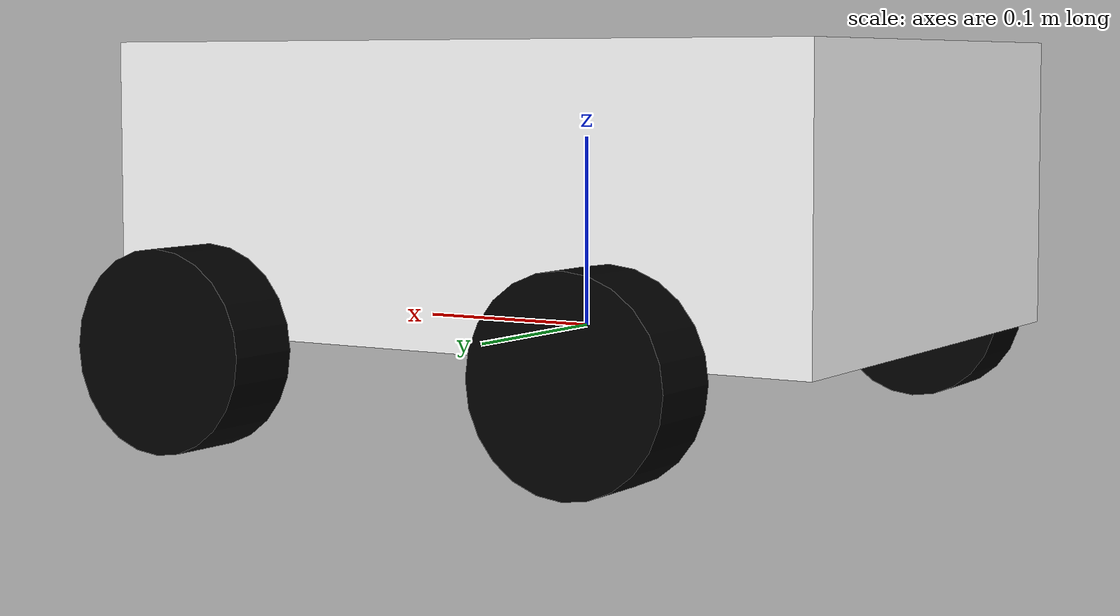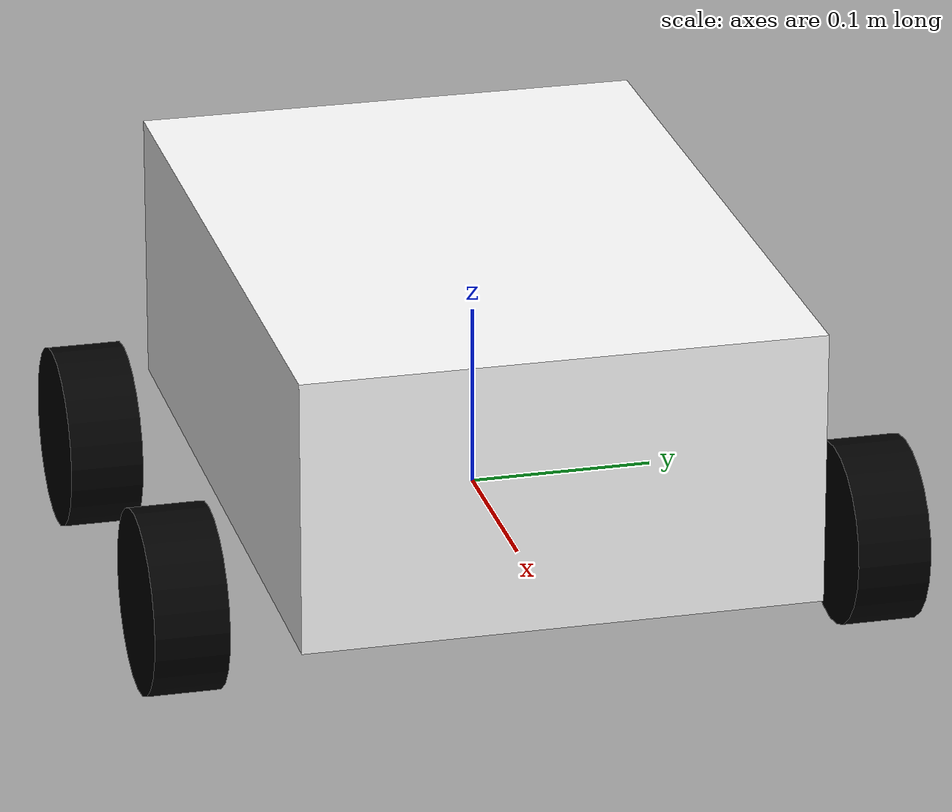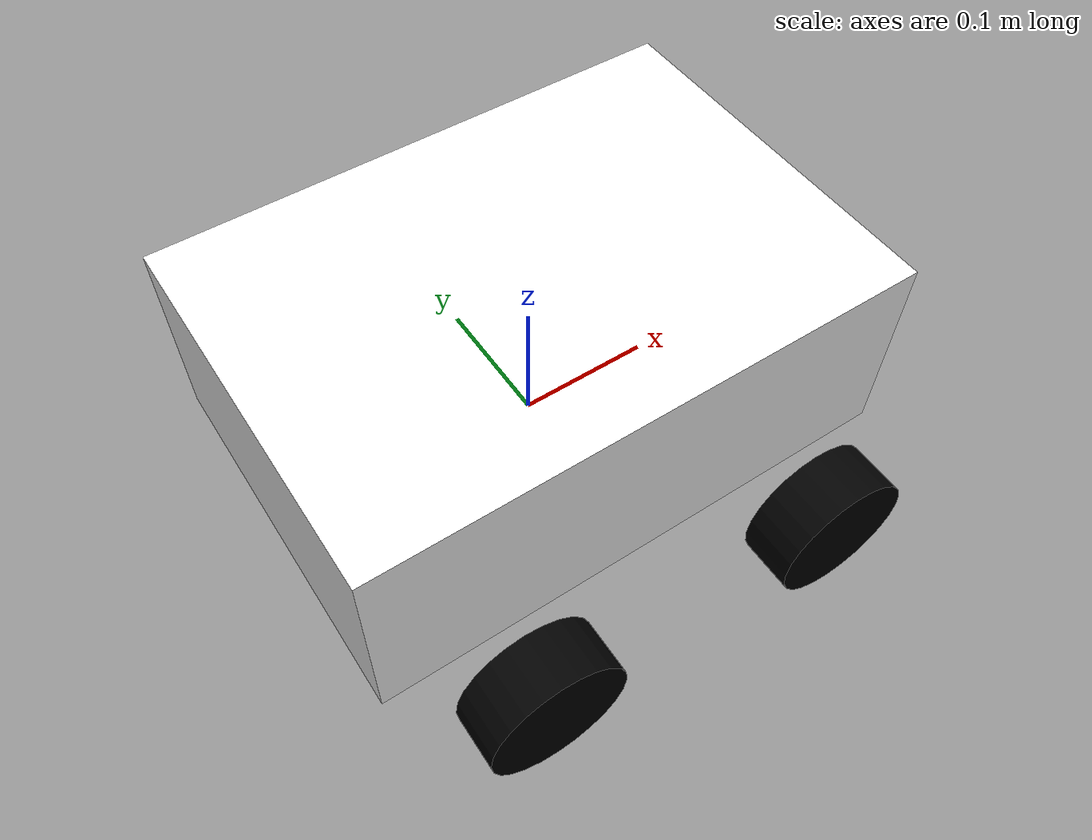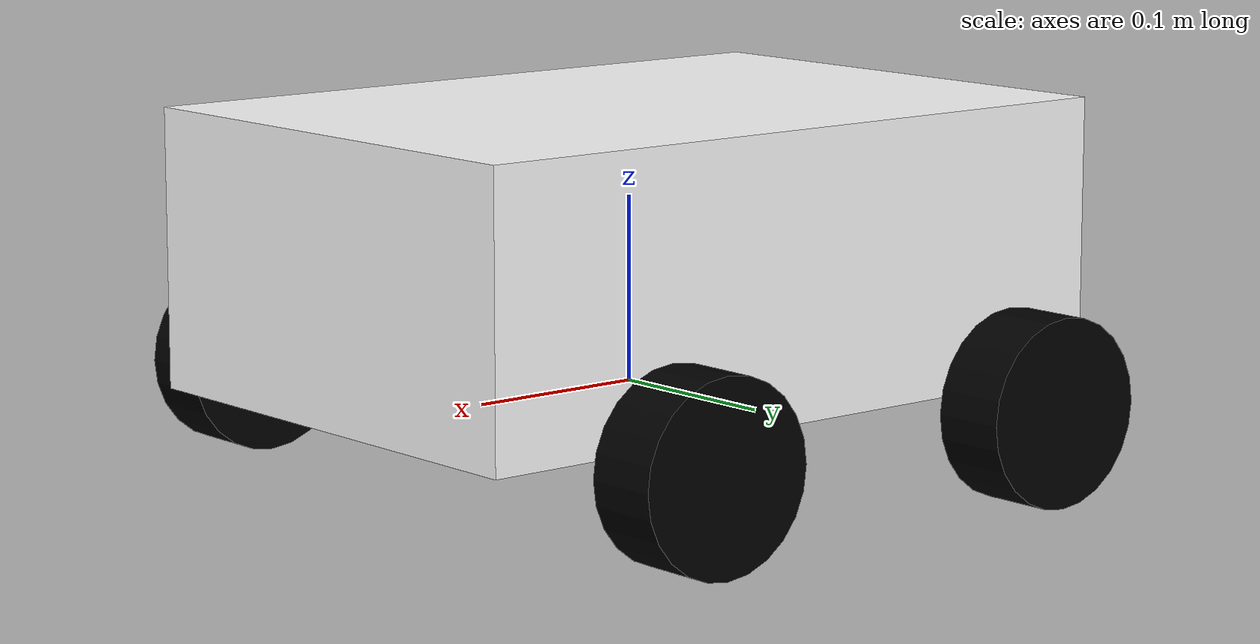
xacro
<?xml version="1.0"?>
<robot xmlns:xacro="http://www.ros.org/wiki/xacro">

    <material name="white"> <color rgba="1 1 1 1" /> </material>
    <material name="blue"> <color rgba="0.2 0.2 1 1" /> </material>
    <material name="black"> <color rgba="0 0 0 1" /> </material>

    <xacro:macro name="inertial_box" params="mass x y z *origin">
        <inertial>
            <xacro:insert_block name="origin"/>
            <mass value="${mass}" />
            <inertia ixx="${(1/12) * mass * (y*y + z*z)}" ixy="0.0" ixz="0.0"
                     iyy="${(1/12) * mass * (x*x + z*z)}" iyz="0.0"
                     izz="${(1/12) * mass * (x*x + y*y)}" />
        </inertial>
    </xacro:macro>

    <xacro:macro name="inertial_cylinder" params="mass length radius *origin">
        <inertial>
            <xacro:insert_block name="origin"/>
            <mass value="${mass}" />
            <inertia ixx="${(1/12) * mass * (3*radius*radius + length*length)}" ixy="0.0" ixz="0.0"
                     iyy="${(1/12) * mass * (3*radius*radius + length*length)}" iyz="0.0"
                     izz="${(1/2) * mass * (radius*radius)}" />
        </inertial>
    </xacro:macro>

    <link name="base_link"></link>

    <joint name="chassis_joint" type="fixed">
        <parent link="base_link"/>
        <child link="chassis"/>
        <origin xyz="0 0 0"/>
    </joint>

    <link name="chassis">
        <visual>
            <origin xyz="0 0 0.075"/>
            <geometry> <box size="0.40 0.28 0.15"/> </geometry>
            <material name="white"/>
        </visual>
        <collision>
            <origin xyz="0 0 0.075"/>
            <geometry> <box size="0.40 0.28 0.15"/> </geometry>
        </collision>
        <xacro:inertial_box mass="0.5" x="0.40" y="0.28" z="0.15">
            <origin xyz="0 0 0.075" rpy="0 0 0"/>
        </xacro:inertial_box>
    </link>

    <joint name="imu_joint" type="fixed">
        <parent link="chassis"/>
        <child link="imu_link"/>
        <origin xyz="0 0 -0.01" rpy="${pi} 0 0"/>
    </joint>

    <link name="imu_link"></link>

    <xacro:macro name="wheel" params="prefix x_reflect y_reflect">
        <joint name="${prefix}_wheel_joint" type="continuous">
            <parent link="base_link"/>
            <child link="${prefix}_wheel"/>
            <origin xyz="${x_reflect*0.115} ${y_reflect*0.19} 0" rpy="${pi/2} 0 0"/>
            <axis xyz="0 0 -1"/>
        </joint>

        <link name="${prefix}_wheel">
            <visual>
                <geometry> <cylinder radius="0.05" length="0.04"/> </geometry>
                <material name="black"/>
            </visual>
            <collision>
                <geometry> <cylinder radius="0.05" length="0.04"/> </geometry>
            </collision>
            <xacro:inertial_cylinder mass="0.1" length="0.04" radius="0.05">
                <origin xyz="0 0 0" rpy="0 0 0"/>
            </xacro:inertial_cylinder>
        </link>
    </xacro:macro>

    <xacro:wheel prefix="front_left" x_reflect="1" y_reflect="1" />
    <xacro:wheel prefix="front_right" x_reflect="1" y_reflect="-1" />
    <xacro:wheel prefix="back_left" x_reflect="-1" y_reflect="1" />
    <xacro:wheel prefix="back_right" x_reflect="-1" y_reflect="-1" />

</robot>
